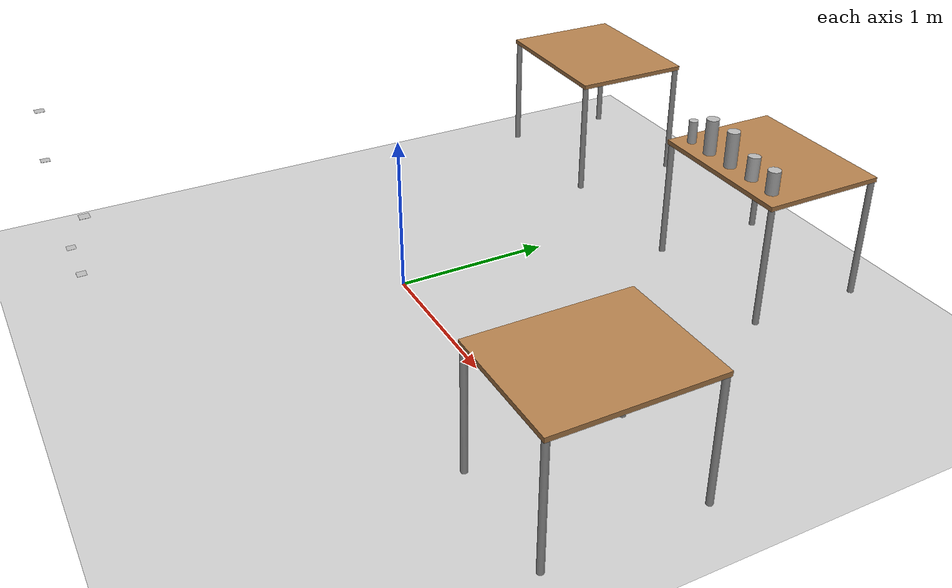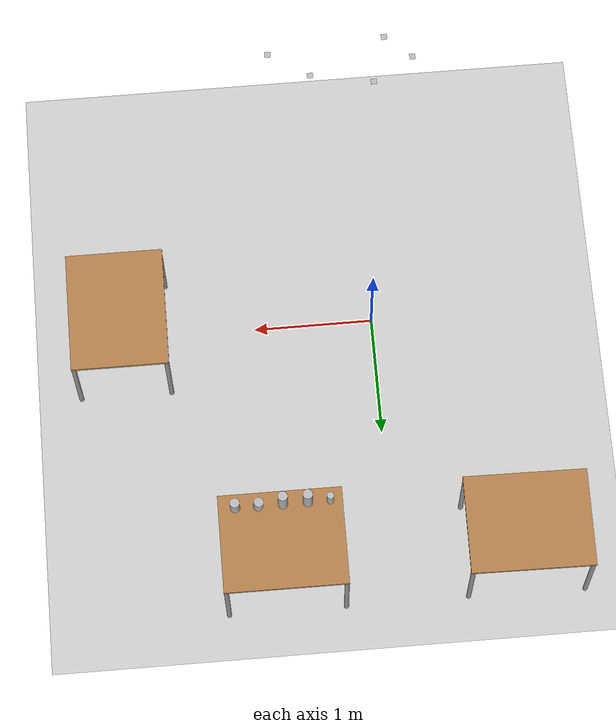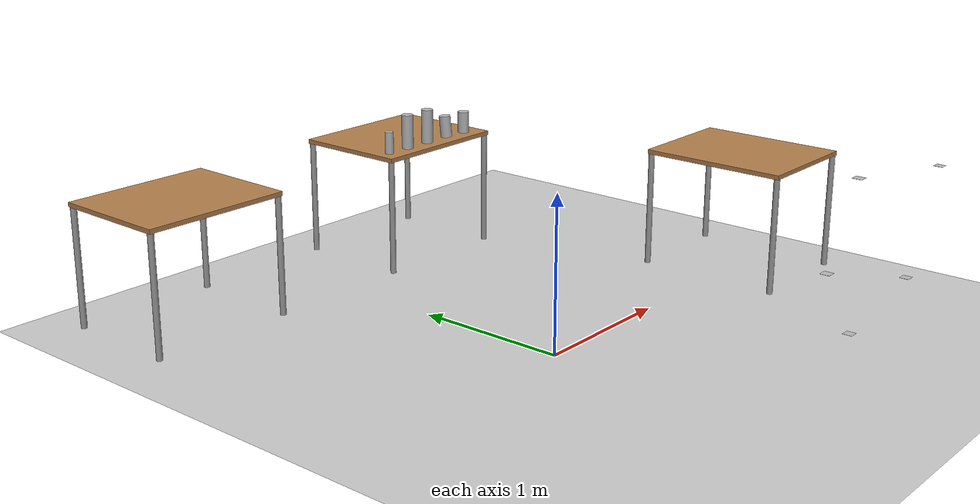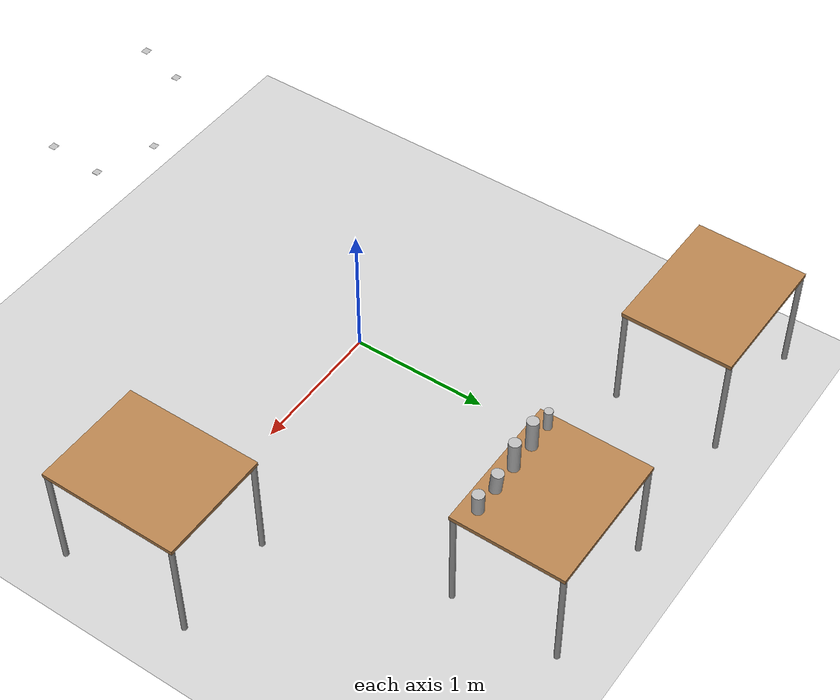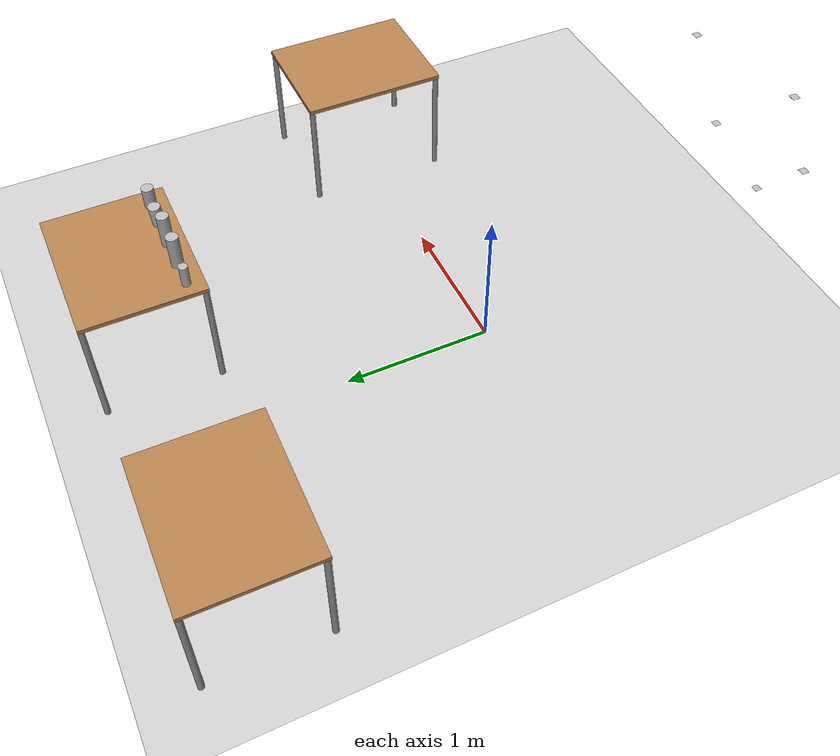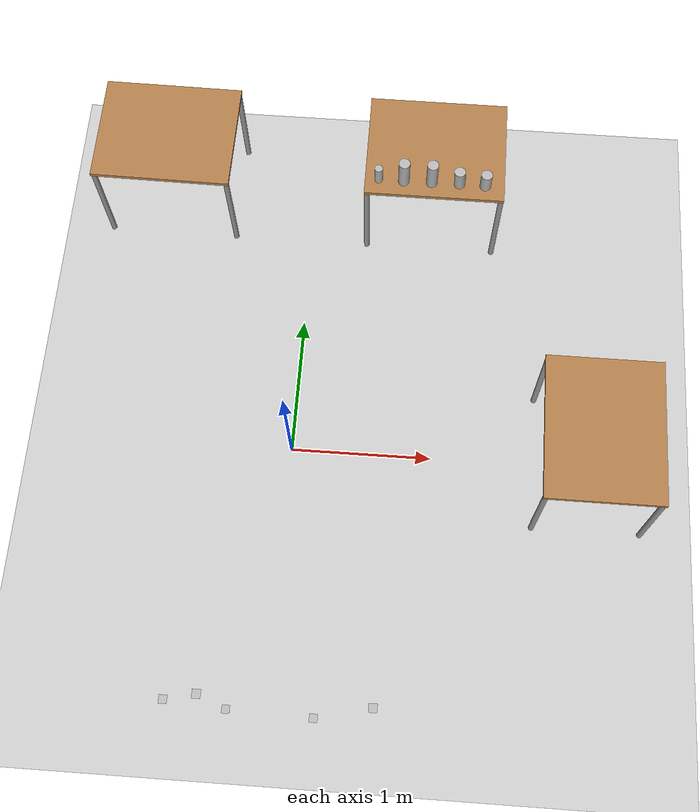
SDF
<sdf version="1.6">
 <world name="default">
  <plugin name="ros_link_attacher_plugin" filename="libgazebo_ros_link_attacher.so"/>
  <light name="sun" type="directional">
   <pose>0 0 10 0 -0 0</pose>
   <diffuse>0.8 0.8 0.8 1</diffuse>
   <specular>0.2 0.2 0.2 1</specular>
   <attenuation>
    <range>1000</range>
    <constant>0.9</constant>
    <linear>0.01</linear>
    <quadratic>0.001</quadratic>
   </attenuation>
   <direction>-0.5 0.1 -0.9</direction>
  </light>
  <model name="ground_plane">
   <static>1</static>
   <link name="link">
    <collision name="collision">
     <geometry><plane><normal>0 0 1</normal><size>100 100</size></plane></geometry>
     <surface>
      <contact><collide_bitmask>65535</collide_bitmask></contact>
      <friction><ode><mu>100</mu><mu2>50</mu2></ode></friction>
     </surface>
    </collision>
    <visual name="visual">
     <cast_shadows>0</cast_shadows>
     <geometry><plane><normal>0 0 1</normal><size>100 100</size></plane></geometry>
     <material>
      <script><uri>file://media/materials/scripts/gazebo.material</uri><name>Gazebo/Grey</name></script>
     </material>
    </visual>
   </link>
  </model>
  <gravity>0 0 -9.8</gravity>
  <magnetic_field>6e-06 2.3e-05 -4.2e-05</magnetic_field>
  <atmosphere type="adiabatic"/>
  <physics name="default_physics" default="0" type="ode">
   <max_step_size>0.001</max_step_size>
   <real_time_factor>1</real_time_factor>
   <real_time_update_rate>1000</real_time_update_rate>
  </physics>
  <scene><ambient>0.4 0.4 0.4 1</ambient><background>0.7 0.7 0.7 1</background><shadows>1</shadows></scene>
  <audio><device>default</device></audio>
  <spherical_coordinates>
   <surface_model>EARTH_WGS84</surface_model>
   <latitude_deg>0</latitude_deg>
   <longitude_deg>0</longitude_deg>
   <elevation>0</elevation>
   <heading_deg>0</heading_deg>
  </spherical_coordinates>
  <model name="table">
   <static>1</static>
   <link name="link">
    <collision name="surface">
     <pose>0 0 0.8 0 -0 0</pose>
     <geometry><box><size>1 0.8 0.03</size></box></geometry>
    </collision>
    <visual name="visual1">
     <pose>0 0 0.8 0 -0 0</pose>
     <geometry><box><size>1 0.8 0.03</size></box></geometry>
     <material>
      <script><uri>file://media/materials/scripts/gazebo.material</uri><name>Gazebo/Wood</name></script>
     </material>
    </visual>
    <collision name="front_left_leg">
     <pose>0.48 0.38 0.4 0 -0 0</pose>
     <geometry><cylinder><radius>0.02</radius><length>0.8</length></cylinder></geometry>
    </collision>
    <visual name="front_left_leg">
     <pose>0.48 0.38 0.4 0 -0 0</pose>
     <geometry><cylinder><radius>0.02</radius><length>0.8</length></cylinder></geometry>
     <material>
      <script><uri>file://media/materials/scripts/gazebo.material</uri><name>Gazebo/Grey</name></script>
     </material>
    </visual>
    <collision name="front_right_leg">
     <pose>0.48 -0.38 0.4 0 -0 0</pose>
     <geometry><cylinder><radius>0.02</radius><length>0.8</length></cylinder></geometry>
    </collision>
    <visual name="front_right_leg">
     <pose>0.48 -0.38 0.4 0 -0 0</pose>
     <geometry><cylinder><radius>0.02</radius><length>0.8</length></cylinder></geometry>
     <material>
      <script><uri>file://media/materials/scripts/gazebo.material</uri><name>Gazebo/Grey</name></script>
     </material>
    </visual>
    <collision name="back_right_leg">
     <pose>-0.48 -0.38 0.4 0 -0 0</pose>
     <geometry><cylinder><radius>0.02</radius><length>0.8</length></cylinder></geometry>
    </collision>
    <visual name="back_right_leg">
     <pose>-0.48 -0.38 0.4 0 -0 0</pose>
     <geometry><cylinder><radius>0.02</radius><length>0.8</length></cylinder></geometry>
     <material>
      <script><uri>file://media/materials/scripts/gazebo.material</uri><name>Gazebo/Grey</name></script>
     </material>
    </visual>
    <collision name="back_left_leg">
     <pose>-0.48 0.38 0.4 0 -0 0</pose>
     <geometry><cylinder><radius>0.02</radius><length>0.8</length></cylinder></geometry>
    </collision>
    <visual name="back_left_leg">
     <pose>-0.48 0.38 0.4 0 -0 0</pose>
     <geometry><cylinder><radius>0.02</radius><length>0.8</length></cylinder></geometry>
     <material>
      <script><uri>file://media/materials/scripts/gazebo.material</uri><name>Gazebo/Grey</name></script>
     </material>
    </visual>
    <velocity_decay><linear>0</linear><angular>0</angular></velocity_decay>
   </link>
   <pose>0.90199 2.08755 0 0 -0 3.14</pose>
  </model>
  <model name="table_0">
   <static>1</static>
   <link name="link">
    <collision name="surface">
     <pose>0 0 0.8 0 -0 0</pose>
     <geometry><box><size>1 0.8 0.03</size></box></geometry>
    </collision>
    <visual name="visual1">
     <pose>0 0 0.8 0 -0 0</pose>
     <geometry><box><size>1 0.8 0.03</size></box></geometry>
     <material>
      <script><uri>file://media/materials/scripts/gazebo.material</uri><name>Gazebo/Wood</name></script>
     </material>
    </visual>
    <collision name="front_left_leg">
     <pose>0.48 0.38 0.4 0 -0 0</pose>
     <geometry><cylinder><radius>0.02</radius><length>0.8</length></cylinder></geometry>
    </collision>
    <visual name="front_left_leg">
     <pose>0.48 0.38 0.4 0 -0 0</pose>
     <geometry><cylinder><radius>0.02</radius><length>0.8</length></cylinder></geometry>
     <material>
      <script><uri>file://media/materials/scripts/gazebo.material</uri><name>Gazebo/Grey</name></script>
     </material>
    </visual>
    <collision name="front_right_leg">
     <pose>0.48 -0.38 0.4 0 -0 0</pose>
     <geometry><cylinder><radius>0.02</radius><length>0.8</length></cylinder></geometry>
    </collision>
    <visual name="front_right_leg">
     <pose>0.48 -0.38 0.4 0 -0 0</pose>
     <geometry><cylinder><radius>0.02</radius><length>0.8</length></cylinder></geometry>
     <material>
      <script><uri>file://media/materials/scripts/gazebo.material</uri><name>Gazebo/Grey</name></script>
     </material>
    </visual>
    <collision name="back_right_leg">
     <pose>-0.48 -0.38 0.4 0 -0 0</pose>
     <geometry><cylinder><radius>0.02</radius><length>0.8</length></cylinder></geometry>
    </collision>
    <visual name="back_right_leg">
     <pose>-0.48 -0.38 0.4 0 -0 0</pose>
     <geometry><cylinder><radius>0.02</radius><length>0.8</length></cylinder></geometry>
     <material>
      <script><uri>file://media/materials/scripts/gazebo.material</uri><name>Gazebo/Grey</name></script>
     </material>
    </visual>
    <collision name="back_left_leg">
     <pose>-0.48 0.38 0.4 0 -0 0</pose>
     <geometry><cylinder><radius>0.02</radius><length>0.8</length></cylinder></geometry>
    </collision>
    <visual name="back_left_leg">
     <pose>-0.48 0.38 0.4 0 -0 0</pose>
     <geometry><cylinder><radius>0.02</radius><length>0.8</length></cylinder></geometry>
     <material>
      <script><uri>file://media/materials/scripts/gazebo.material</uri><name>Gazebo/Grey</name></script>
     </material>
    </visual>
    <velocity_decay><linear>0</linear><angular>0</angular></velocity_decay>
   </link>
   <pose>2.11403 0.023827 0 0 -0 1.57</pose>
  </model>
  <model name="table_1">
   <static>1</static>
   <link name="link">
    <collision name="surface">
     <pose>0 0 0.8 0 -0 0</pose>
     <geometry><box><size>1 0.8 0.03</size></box></geometry>
    </collision>
    <visual name="visual1">
     <pose>0 0 0.8 0 -0 0</pose>
     <geometry><box><size>1 0.8 0.03</size></box></geometry>
     <material>
      <script><uri>file://media/materials/scripts/gazebo.material</uri><name>Gazebo/Wood</name></script>
     </material>
    </visual>
    <collision name="front_left_leg">
     <pose>0.48 0.38 0.4 0 -0 0</pose>
     <geometry><cylinder><radius>0.02</radius><length>0.8</length></cylinder></geometry>
    </collision>
    <visual name="front_left_leg">
     <pose>0.48 0.38 0.4 0 -0 0</pose>
     <geometry><cylinder><radius>0.02</radius><length>0.8</length></cylinder></geometry>
     <material>
      <script><uri>file://media/materials/scripts/gazebo.material</uri><name>Gazebo/Grey</name></script>
     </material>
    </visual>
    <collision name="front_right_leg">
     <pose>0.48 -0.38 0.4 0 -0 0</pose>
     <geometry><cylinder><radius>0.02</radius><length>0.8</length></cylinder></geometry>
    </collision>
    <visual name="front_right_leg">
     <pose>0.48 -0.38 0.4 0 -0 0</pose>
     <geometry><cylinder><radius>0.02</radius><length>0.8</length></cylinder></geometry>
     <material>
      <script><uri>file://media/materials/scripts/gazebo.material</uri><name>Gazebo/Grey</name></script>
     </material>
    </visual>
    <collision name="back_right_leg">
     <pose>-0.48 -0.38 0.4 0 -0 0</pose>
     <geometry><cylinder><radius>0.02</radius><length>0.8</length></cylinder></geometry>
    </collision>
    <visual name="back_right_leg">
     <pose>-0.48 -0.38 0.4 0 -0 0</pose>
     <geometry><cylinder><radius>0.02</radius><length>0.8</length></cylinder></geometry>
     <material>
      <script><uri>file://media/materials/scripts/gazebo.material</uri><name>Gazebo/Grey</name></script>
     </material>
    </visual>
    <collision name="back_left_leg">
     <pose>-0.48 0.38 0.4 0 -0 0</pose>
     <geometry><cylinder><radius>0.02</radius><length>0.8</length></cylinder></geometry>
    </collision>
    <visual name="back_left_leg">
     <pose>-0.48 0.38 0.4 0 -0 0</pose>
     <geometry><cylinder><radius>0.02</radius><length>0.8</length></cylinder></geometry>
     <material>
      <script><uri>file://media/materials/scripts/gazebo.material</uri><name>Gazebo/Grey</name></script>
     </material>
    </visual>
    <velocity_decay><linear>0</linear><angular>0</angular></velocity_decay>
   </link>
   <pose>-1.06741 2.09391 0 0 -0 3.12841</pose>
  </model>
  <model name="aruco_marker_original_111">
   <static>0</static>
   <link name="marker">
    <inertial>
     <mass>0.1</mass>
     <inertia><ixx>0</ixx><ixy>0</ixy><ixz>0</ixz><iyy>0</iyy><iyz>0</iyz><izz>0</izz></inertia>
    </inertial>
    <visual name="visual">
     <pose>0 0 0 0 -0 1.57</pose>
     <geometry><box><size>0.05 0.05 0.001</size></box></geometry>
     <material>
      <script>
       <uri>model://aruco_marker_original_111/material/scripts</uri>
       <uri>model://aruco_marker_original_111/material/textures</uri>
       <name>Aruco/aruco_marker_original_111</name>
      </script>
     </material>
    </visual>
    <collision name="collision"><geometry><box><size>0.05 0.05 0.001</size></box></geometry></collision>
    <self_collide>1</self_collide>
   </link>
   <pose>0.36354 -1.94089 0.853764 -1.7e-05 -2e-05 3.14</pose>
  </model>
  <model name="aruco_marker_original_222">
   <static>0</static>
   <link name="marker">
    <inertial>
     <mass>0.1</mass>
     <inertia><ixx>0</ixx><ixy>0</ixy><ixz>0</ixz><iyy>0</iyy><iyz>0</iyz><izz>0</izz></inertia>
    </inertial>
    <visual name="visual">
     <pose>0 0 0 0 -0 1.57</pose>
     <geometry><box><size>0.05 0.05 0.001</size></box></geometry>
     <material>
      <script>
       <uri>model://aruco_marker_original_222/material/scripts</uri>
       <uri>model://aruco_marker_original_222/material/textures</uri>
       <name>Aruco/aruco_marker_original_222</name>
      </script>
     </material>
    </visual>
    <collision name="collision"><geometry><box><size>0.05 0.05 0.001</size></box></geometry></collision>
    <self_collide>1</self_collide>
   </link>
   <pose>0.715521 -1.91498 1.36018 -7e-06 -1e-06 3.14</pose>
  </model>
  <model name="aruco_marker_original_444">
   <static>0</static>
   <link name="marker">
    <inertial>
     <mass>0.1</mass>
     <inertia><ixx>0</ixx><ixy>0</ixy><ixz>0</ixz><iyy>0</iyy><iyz>0</iyz><izz>0</izz></inertia>
    </inertial>
    <visual name="visual">
     <pose>0 0 0 0 -0 1.57</pose>
     <geometry><box><size>0.05 0.05 0.001</size></box></geometry>
     <material>
      <script>
       <uri>model://aruco_marker_original_444/material/scripts</uri>
       <uri>model://aruco_marker_original_444/material/textures</uri>
       <name>Aruco/aruco_marker_original_444</name>
      </script>
     </material>
    </visual>
    <collision name="collision"><geometry><box><size>0.05 0.05 0.001</size></box></geometry></collision>
    <self_collide>1</self_collide>
   </link>
   <pose>-0.499495 -1.9228 1.1105 1e-06 9e-06 3.14</pose>
  </model>
  <model name="aruco_marker_original_582">
   <static>0</static>
   <link name="marker">
    <inertial>
     <mass>0.1</mass>
     <inertia><ixx>0</ixx><ixy>0</ixy><ixz>0</ixz><iyy>0</iyy><iyz>0</iyz><izz>0</izz></inertia>
    </inertial>
    <visual name="visual">
     <pose>0 0 0 0 -0 1.57</pose>
     <geometry><box><size>0.05 0.05 0.001</size></box></geometry>
     <material>
      <script>
       <uri>model://aruco_marker_original_582/material/scripts</uri>
       <uri>model://aruco_marker_original_582/material/textures</uri>
       <name>Aruco/aruco_marker_original_582</name>
      </script>
     </material>
    </visual>
    <collision name="collision"><geometry><box><size>0.05 0.05 0.001</size></box></geometry></collision>
    <self_collide>1</self_collide>
   </link>
   <pose>-0.251242 -1.92505 1.5105 -1.2e-05 -1.6e-05 3.14</pose>
  </model>
  <model name="aruco_marker_original_333">
   <static>0</static>
   <link name="marker">
    <inertial>
     <mass>0.1</mass>
     <inertia><ixx>0</ixx><ixy>0</ixy><ixz>0</ixz><iyy>0</iyy><iyz>0</iyz><izz>0</izz></inertia>
    </inertial>
    <visual name="visual">
     <pose>0 0 0 0 -0 1.57</pose>
     <geometry><box><size>0.05 0.05 0.001</size></box></geometry>
     <material>
      <script>
       <uri>model://aruco_marker_original_333/material/scripts</uri>
       <uri>model://aruco_marker_original_333/material/textures</uri>
       <name>Aruco/aruco_marker_original_333</name>
      </script>
     </material>
    </visual>
    <collision name="collision"><geometry><box><size>0.05 0.05 0.001</size></box></geometry></collision>
    <self_collide>1</self_collide>
   </link>
   <pose>-0.179853 -1.91157 0.710491 -2e-06 9e-06 0</pose>
  </model>
  <model name="pringles">
   <static>0</static>
   <link name="link">
    <inertial>
     <mass>0.25</mass>
     <inertia><ixx>0</ixx><ixy>0</ixy><ixz>0</ixz><iyy>0</iyy><iyz>0</iyz><izz>0</izz></inertia>
    </inertial>
    <collision name="collision">
     <geometry><cylinder><radius>0.04</radius><length>0.235</length></cylinder></geometry>
    </collision>
    <visual name="visual">
     <geometry><cylinder><radius>0.04</radius><length>0.235</length></cylinder></geometry>
     <material>
      <script>
       <uri>model://pringles/material/scripts</uri>
       <uri>model://pringles/material/textures</uri>
       <name>Custom/pringles</name>
      </script>
     </material>
    </visual>
    <velocity_decay><linear>0</linear><angular>0</angular></velocity_decay>
   </link>
   <pose>0.679998 1.79976 0.932501 -2.9e-05 -0.000253 -2.05008</pose>
  </model>
  <model name="pringles2">
   <static>0</static>
   <link name="link">
    <inertial>
     <mass>0.25</mass>
     <inertia><ixx>0</ixx><ixy>0</ixy><ixz>0</ixz><iyy>0</iyy><iyz>0</iyz><izz>0</izz></inertia>
    </inertial>
    <collision name="collision">
     <pose>0 0 0.12 -3.14159 -0 0</pose>
     <geometry><cylinder><radius>0.04</radius><length>0.235</length></cylinder></geometry>
    </collision>
    <visual name="visual">
     <pose>0 0 0.12 -3.14159 -0 0</pose>
     <geometry><cylinder><radius>0.04</radius><length>0.235</length></cylinder></geometry>
     <material>
      <script>
       <uri>model://pringles2/material/scripts</uri>
       <uri>model://pringles2/material/textures</uri>
       <name>Custom/pringles2</name>
      </script>
     </material>
    </visual>
    <velocity_decay><linear>0</linear><angular>0</angular></velocity_decay>
   </link>
   <pose>0.880006 1.80013 0.812508 -5.1e-05 -0.000196 -0.800039</pose>
  </model>
  <model name="cocacola">
   <static>0</static>
   <link name="link">
    <inertial>
     <mass>0.25</mass>
     <inertia><ixx>0</ixx><ixy>0</ixy><ixz>0</ixz><iyy>0</iyy><iyz>0</iyz><izz>0</izz></inertia>
    </inertial>
    <collision name="collision">
     <pose>0 0 0.075 -3.14159 -0 0</pose>
     <geometry><cylinder><radius>0.04</radius><length>0.15</length></cylinder></geometry>
    </collision>
    <visual name="visual">
     <pose>0 0 0.075 -3.14159 -0 0</pose>
     <geometry><cylinder><radius>0.04</radius><length>0.15</length></cylinder></geometry>
     <material>
      <script>
       <uri>model://cocacola/material/scripts</uri>
       <uri>model://cocacola/material/textures</uri>
       <name>Custom/cocacola</name>
      </script>
     </material>
    </visual>
    <velocity_decay><linear>0</linear><angular>0</angular></velocity_decay>
   </link>
   <pose>1.2632 1.8 0.815003 -0.000135 0.000288 -2.35</pose>
  </model>
  <model name="biscuits_pack">
   <static>0</static>
   <link name="link">
    <inertial>
     <mass>0.25</mass>
     <inertia><ixx>0</ixx><ixy>0</ixy><ixz>0</ixz><iyy>0</iyy><iyz>0</iyz><izz>0</izz></inertia>
    </inertial>
    <collision name="collision">
     <geometry><cylinder><radius>0.029</radius><length>0.15</length></cylinder></geometry>
    </collision>
    <visual name="visual">
     <geometry><cylinder><radius>0.029</radius><length>0.15</length></cylinder></geometry>
     <material>
      <script>
       <uri>model://biscuits_pack/material/scripts</uri>
       <uri>model://biscuits_pack/material/textures</uri>
       <name>Custom/biscuits_pack</name>
      </script>
     </material>
    </visual>
    <velocity_decay><linear>0</linear><angular>0</angular></velocity_decay>
   </link>
   <pose>0.499413 1.79997 0.890007 -0.000116 -0.000203 -0.000163</pose>
  </model>
  <model name="sprite">
   <static>0</static>
   <link name="link">
    <inertial>
     <mass>0.1</mass>
     <inertia><ixx>0</ixx><ixy>0</ixy><ixz>0</ixz><iyy>0</iyy><iyz>0</iyz><izz>0</izz></inertia>
    </inertial>
    <collision name="collision">
     <pose>0 0 0.075 -3.14159 -0 0</pose>
     <geometry><cylinder><radius>0.04</radius><length>0.15</length></cylinder></geometry>
    </collision>
    <visual name="visual">
     <pose>0 0 0.075 -3.14159 -0 0</pose>
     <geometry><cylinder><radius>0.04</radius><length>0.15</length></cylinder></geometry>
     <material>
      <script>
       <uri>model://sprite/material/scripts</uri>
       <uri>model://sprite/material/textures</uri>
       <name>Custom/sprite</name>
      </script>
     </material>
    </visual>
    <velocity_decay><linear>0</linear><angular>0</angular></velocity_decay>
   </link>
   <pose>1.07994 1.80009 0.818238 0.017657 -0.079106 -1.15058</pose>
  </model>
 </world>
</sdf>
